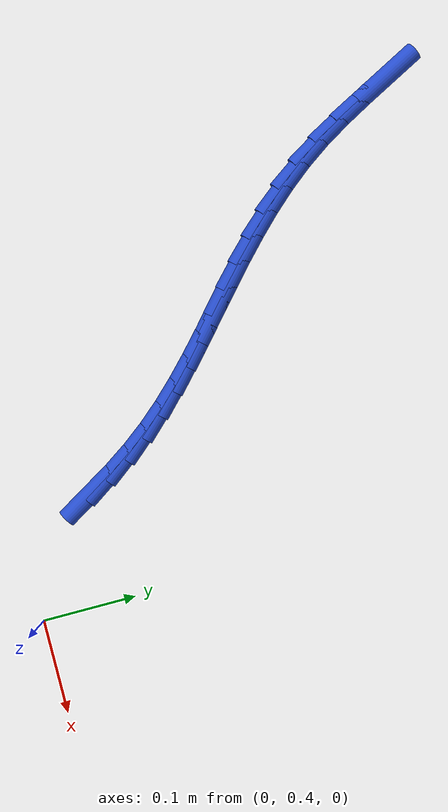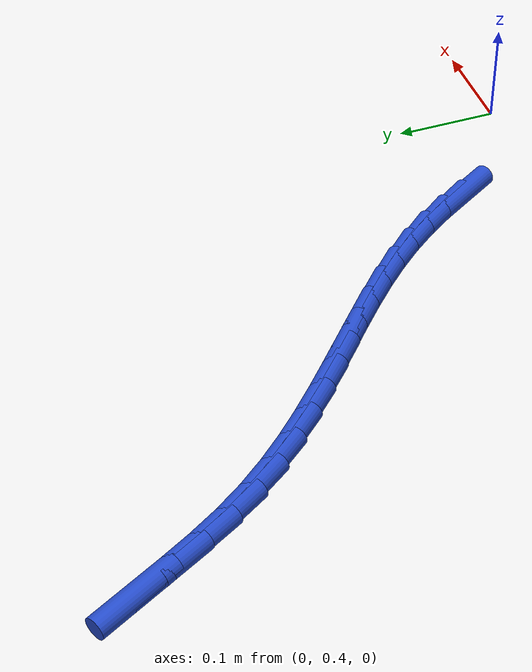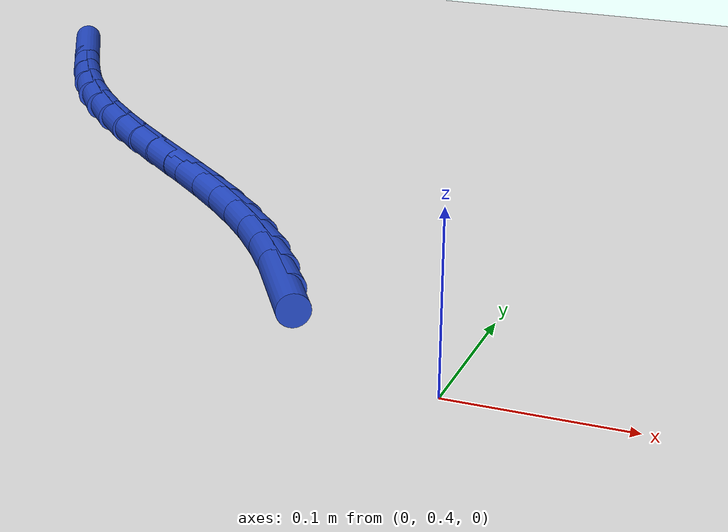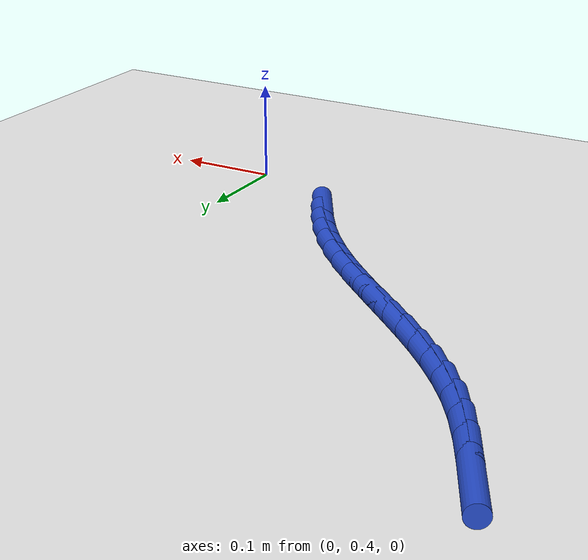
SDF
<sdf version="1.6">
 <world name="default">
  <model name="ground_plane">
   <static>1</static>
   <link name="link">
    <collision name="collision">
     <geometry><plane><normal>0 0 1</normal><size>100 100</size></plane></geometry>
     <surface><friction><ode><mu>100</mu><mu2>50</mu2></ode></friction></surface>
    </collision>
    <visual name="visual">
     <cast_shadows>0</cast_shadows>
     <geometry><plane><normal>0 0 1</normal><size>100 100</size></plane></geometry>
     <material>
      <script><uri>file://media/materials/scripts/gazebo.material</uri><name>Gazebo/WhiteGlow</name></script>
     </material>
    </visual>
   </link>
  </model>
  <model name="line">
   <link name="link_17">
    <pose>-0.11864158419631418 0.48620114015667176 0.01 0 1.57 -1.0332065102352515</pose>
    <collision name="collision">
     <geometry><cylinder><radius>0.01</radius><length>0.08</length></cylinder></geometry>
    </collision>
    <visual name="visual">
     <material>
      <script><name>Gazebo/Blue</name><uri>file://media/materials/scripts/gazebo.material</uri></script>
     </material>
     <geometry><cylinder><radius>0.01</radius><length>0.08</length></cylinder></geometry>
    </visual>
   </link>
   <link name="link_18">
    <pose>-0.13362817240285668 0.5113397521029615 0.01 0 1.57 -0.9784205083939612</pose>
    <collision name="collision">
     <geometry><cylinder><radius>0.01</radius><length>0.08</length></cylinder></geometry>
    </collision>
    <visual name="visual">
     <material>
      <script><name>Gazebo/Blue</name><uri>file://media/materials/scripts/gazebo.material</uri></script>
     </material>
     <geometry><cylinder><radius>0.01</radius><length>0.08</length></cylinder></geometry>
    </visual>
   </link>
   <link name="link_19">
    <pose>-0.14986142537336156 0.5354604113564478 0.01 0 1.57 -0.9186967897504351</pose>
    <collision name="collision">
     <geometry><cylinder><radius>0.01</radius><length>0.08</length></cylinder></geometry>
    </collision>
    <visual name="visual">
     <material>
      <script><name>Gazebo/Blue</name><uri>file://media/materials/scripts/gazebo.material</uri></script>
     </material>
     <geometry><cylinder><radius>0.01</radius><length>0.08</length></cylinder></geometry>
    </visual>
   </link>
   <link name="link_20">
    <pose>-0.16741097132468777 0.558445384378147 0.01 0 1.57 -0.8562782998868227</pose>
    <collision name="collision">
     <geometry><cylinder><radius>0.01</radius><length>0.08</length></cylinder></geometry>
    </collision>
    <visual name="visual">
     <material>
      <script><name>Gazebo/Blue</name><uri>file://media/materials/scripts/gazebo.material</uri></script>
     </material>
     <geometry><cylinder><radius>0.01</radius><length>0.08</length></cylinder></geometry>
    </visual>
   </link>
   <link name="link_21">
    <pose>-0.18630445428821077 0.5802267435483839 0.01 0 1.57 -0.802872218110293</pose>
    <collision name="collision">
     <geometry><cylinder><radius>0.01</radius><length>0.08</length></cylinder></geometry>
    </collision>
    <visual name="visual">
     <material>
      <script><name>Gazebo/Blue</name><uri>file://media/materials/scripts/gazebo.material</uri></script>
     </material>
     <geometry><cylinder><radius>0.01</radius><length>0.08</length></cylinder></geometry>
    </visual>
   </link>
   <link name="link_22">
    <pose>-0.20635522078494595 0.6009907827927262 0.01 0 1.57 -0.7624744068336484</pose>
    <collision name="collision">
     <geometry><cylinder><radius>0.01</radius><length>0.08</length></cylinder></geometry>
    </collision>
    <visual name="visual">
     <material>
      <script><name>Gazebo/Blue</name><uri>file://media/materials/scripts/gazebo.material</uri></script>
     </material>
     <geometry><cylinder><radius>0.01</radius><length>0.08</length></cylinder></geometry>
    </visual>
   </link>
   <link name="link_23">
    <pose>-0.22730842062482756 0.6210046979251593 0.01 0 1.57 -0.7351209951692624</pose>
    <collision name="collision">
     <geometry><cylinder><radius>0.01</radius><length>0.08</length></cylinder></geometry>
    </collision>
    <visual name="visual">
     <material>
      <script><name>Gazebo/Blue</name><uri>file://media/materials/scripts/gazebo.material</uri></script>
     </material>
     <geometry><cylinder><radius>0.01</radius><length>0.08</length></cylinder></geometry>
    </visual>
   </link>
   <link name="link_24">
    <pose>-0.24890917492477538 0.6405357187982464 0.01 0 1.57 -0.7206581626860784</pose>
    <collision name="collision">
     <geometry><cylinder><radius>0.01</radius><length>0.08</length></cylinder></geometry>
    </collision>
    <visual name="visual">
     <material>
      <script><name>Gazebo/Blue</name><uri>file://media/materials/scripts/gazebo.material</uri></script>
     </material>
     <geometry><cylinder><radius>0.01</radius><length>0.08</length></cylinder></geometry>
    </visual>
   </link>
   <link name="link_25">
    <pose>-0.27090260480170913 0.6598510752645507 0.01 0 1.57 -0.718883705059251</pose>
    <collision name="collision">
     <geometry><cylinder><radius>0.01</radius><length>0.08</length></cylinder></geometry>
    </collision>
    <visual name="visual">
     <material>
      <script><name>Gazebo/Blue</name><uri>file://media/materials/scripts/gazebo.material</uri></script>
     </material>
     <geometry><cylinder><radius>0.01</radius><length>0.08</length></cylinder></geometry>
    </visual>
   </link>
   <link name="link_26">
    <pose>-0.2930338313725486 0.6792179971766351 0.01 0 1.57 -0.7296183190790568</pose>
    <collision name="collision">
     <geometry><cylinder><radius>0.01</radius><length>0.08</length></cylinder></geometry>
    </collision>
    <visual name="visual">
     <material>
      <script><name>Gazebo/Blue</name><uri>file://media/materials/scripts/gazebo.material</uri></script>
     </material>
     <geometry><cylinder><radius>0.01</radius><length>0.08</length></cylinder></geometry>
    </visual>
   </link>
   <link name="link_27">
    <pose>-0.31504797575421356 0.6989037143870633 0.01 0 1.57 -0.7527132531716278</pose>
    <collision name="collision">
     <geometry><cylinder><radius>0.01</radius><length>0.08</length></cylinder></geometry>
    </collision>
    <visual name="visual">
     <material>
      <script><name>Gazebo/Blue</name><uri>file://media/materials/scripts/gazebo.material</uri></script>
     </material>
     <geometry><cylinder><radius>0.01</radius><length>0.08</length></cylinder></geometry>
    </visual>
   </link>
   <link name="link_28">
    <pose>-0.33669015906362393 0.7191754567483987 0.01 0 1.57 -0.7880002724779869</pose>
    <collision name="collision">
     <geometry><cylinder><radius>0.01</radius><length>0.08</length></cylinder></geometry>
    </collision>
    <visual name="visual">
     <material>
      <script><name>Gazebo/Blue</name><uri>file://media/materials/scripts/gazebo.material</uri></script>
     </material>
     <geometry><cylinder><radius>0.01</radius><length>0.08</length></cylinder></geometry>
    </visual>
   </link>
   <link name="link_29">
    <pose>-0.3577055024176993 0.7403004541132038 0.01 0 1.57 -0.8351894958791275</pose>
    <collision name="collision">
     <geometry><cylinder><radius>0.01</radius><length>0.08</length></cylinder></geometry>
    </collision>
    <visual name="visual">
     <material>
      <script><name>Gazebo/Blue</name><uri>file://media/materials/scripts/gazebo.material</uri></script>
     </material>
     <geometry><cylinder><radius>0.01</radius><length>0.08</length></cylinder></geometry>
    </visual>
   </link>
   <link name="link_30">
    <pose>-0.37783912693335936 0.7625459363340423 0.01 0 1.57 -0.8937255576262926</pose>
    <collision name="collision">
     <geometry><cylinder><radius>0.01</radius><length>0.08</length></cylinder></geometry>
    </collision>
    <visual name="visual">
     <material>
      <script><name>Gazebo/Blue</name><uri>file://media/materials/scripts/gazebo.material</uri></script>
     </material>
     <geometry><cylinder><radius>0.01</radius><length>0.08</length></cylinder></geometry>
    </visual>
   </link>
   <link name="link_31">
    <pose>-0.3968361537275239 0.7861791332634773 0.01 0 1.57 -0.9624294779526396</pose>
    <collision name="collision">
     <geometry><cylinder><radius>0.01</radius><length>0.08</length></cylinder></geometry>
    </collision>
    <visual name="visual">
     <material>
      <script><name>Gazebo/Blue</name><uri>file://media/materials/scripts/gazebo.material</uri></script>
     </material>
     <geometry><cylinder><radius>0.01</radius><length>0.08</length></cylinder></geometry>
    </visual>
   </link>
   <link name="link_32">
    <pose>-0.4144455172038463 0.8114621173892622 0.01 0 1.57 -1.0276484594299946</pose>
    <collision name="collision">
     <geometry><cylinder><radius>0.01</radius><length>0.08</length></cylinder></geometry>
    </collision>
    <visual name="visual">
     <material>
      <script><name>Gazebo/Blue</name><uri>file://media/materials/scripts/gazebo.material</uri></script>
     </material>
     <geometry><cylinder><radius>0.01</radius><length>0.08</length></cylinder></geometry>
    </visual>
   </link>
   <link name="link_33">
    <pose>-0.4306624185271714 0.8383238922177547 0.01 0 1.57 -1.070710505359135</pose>
    <collision name="collision">
     <geometry><cylinder><radius>0.01</radius><length>0.08</length></cylinder></geometry>
    </collision>
    <visual name="visual">
     <material>
      <script><name>Gazebo/Blue</name><uri>file://media/materials/scripts/gazebo.material</uri></script>
     </material>
     <geometry><cylinder><radius>0.01</radius><length>0.08</length></cylinder></geometry>
    </visual>
   </link>
   <link name="link_34">
    <pose>-0.44587417131279616 0.8661631400141048 0.01 0 1.57 -1.0917946703447043</pose>
    <collision name="collision">
     <geometry><cylinder><radius>0.01</radius><length>0.08</length></cylinder></geometry>
    </collision>
    <visual name="visual">
     <material>
      <script><name>Gazebo/Blue</name><uri>file://media/materials/scripts/gazebo.material</uri></script>
     </material>
     <geometry><cylinder><radius>0.01</radius><length>0.08</length></cylinder></geometry>
    </visual>
   </link>
   <link name="link_35">
    <pose>-0.460503064657572 0.8943312396722747 0.01 0 1.57 -1.0916391535742775</pose>
    <collision name="collision">
     <geometry><cylinder><radius>0.01</radius><length>0.08</length></cylinder></geometry>
    </collision>
    <visual name="visual">
     <material>
      <script><name>Gazebo/Blue</name><uri>file://media/materials/scripts/gazebo.material</uri></script>
     </material>
     <geometry><cylinder><radius>0.01</radius><length>0.08</length></cylinder></geometry>
    </visual>
   </link>
  </model>
 </world>
</sdf>
